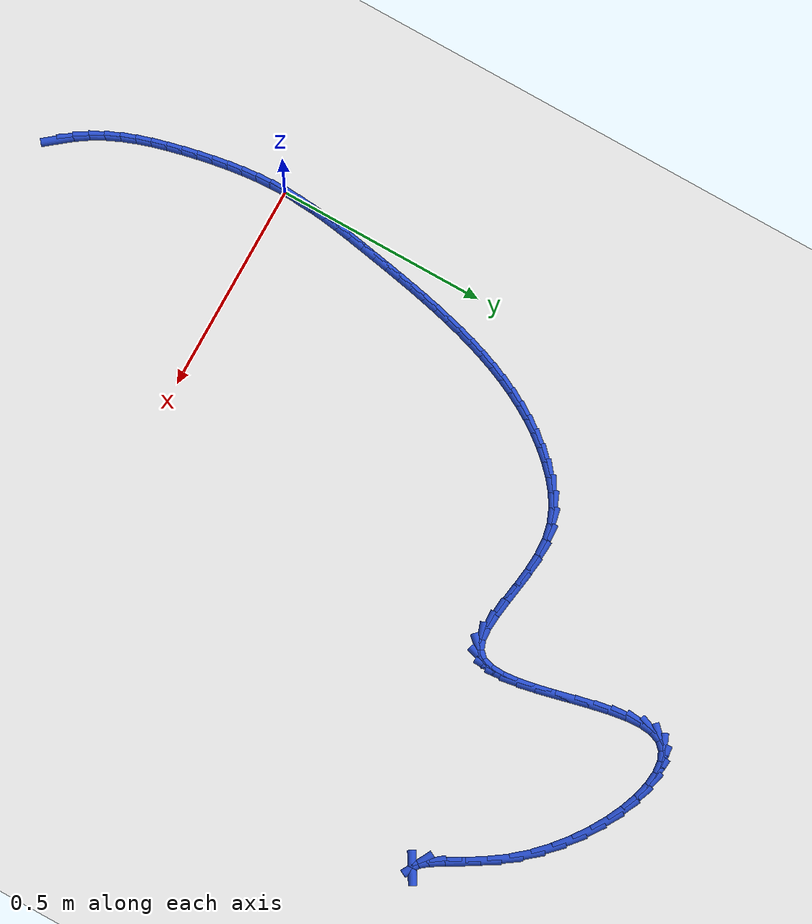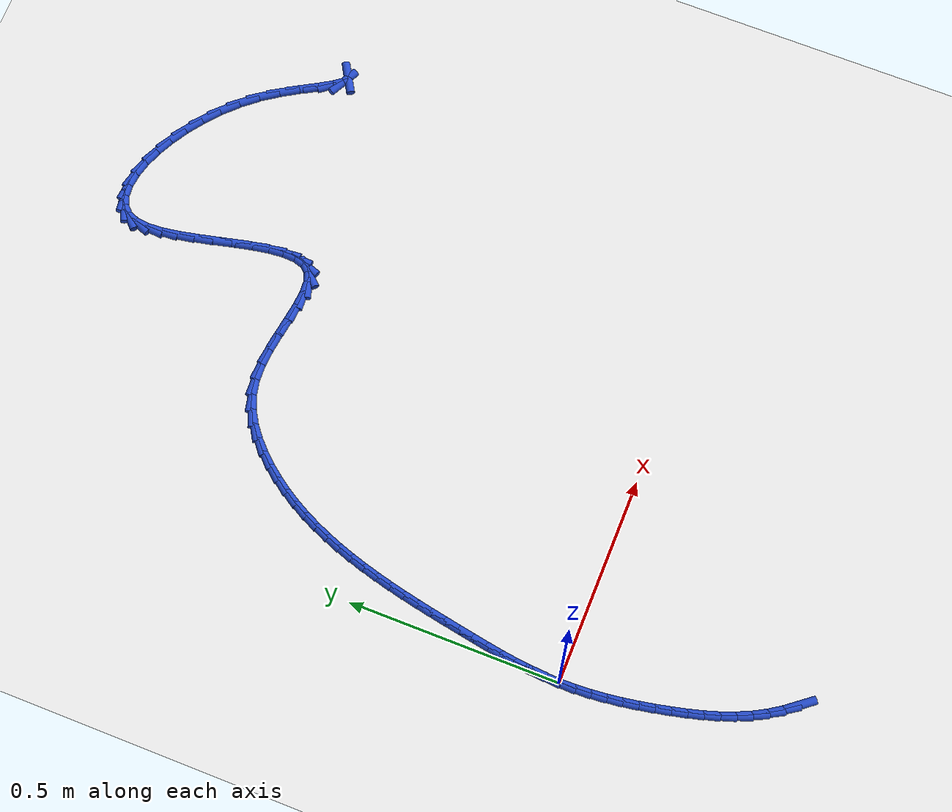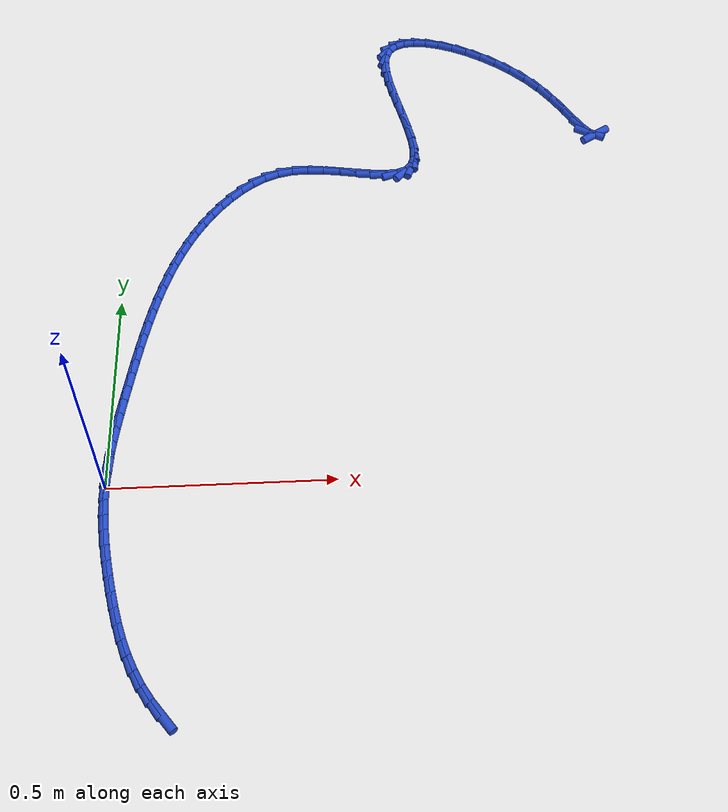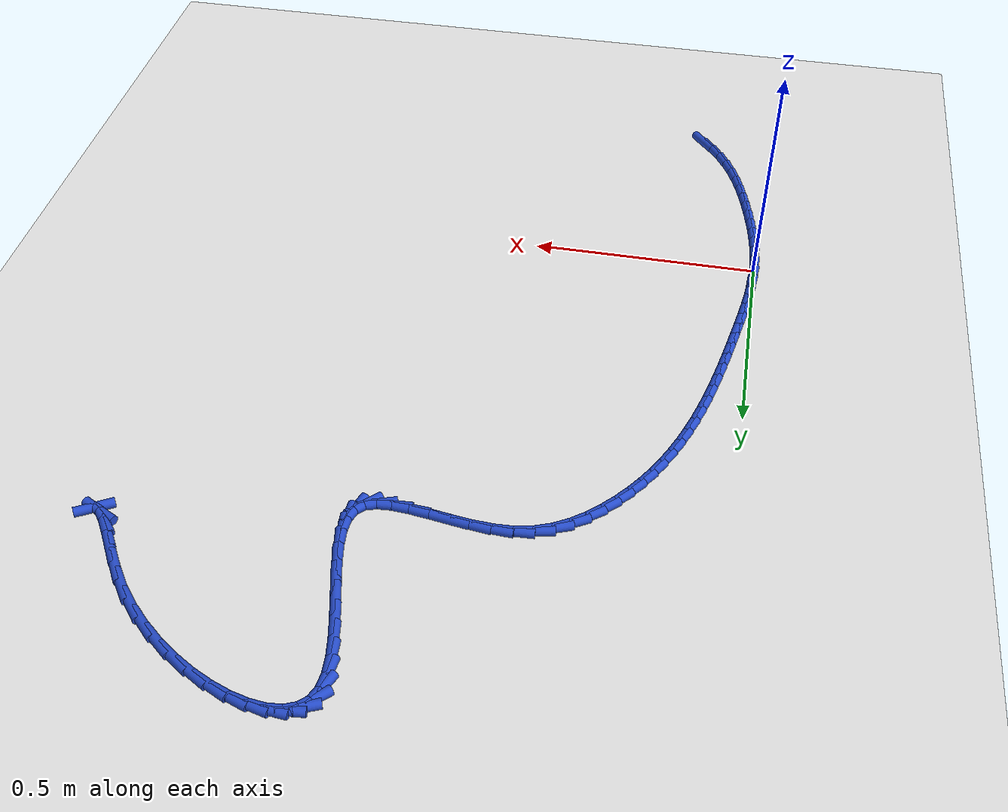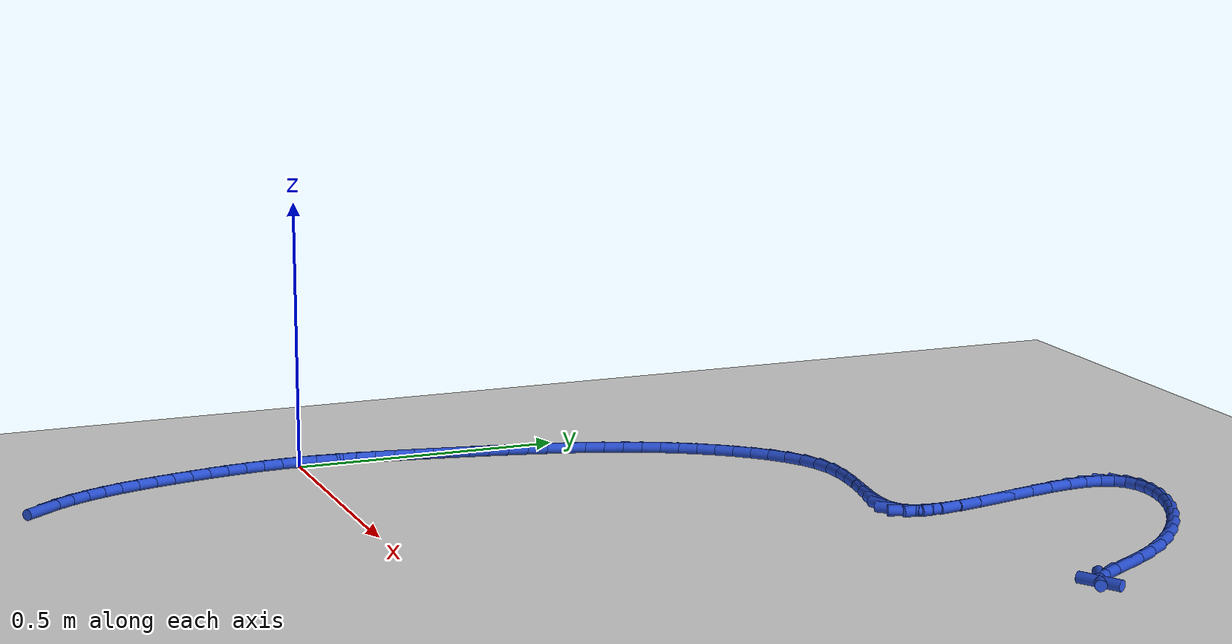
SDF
<sdf version="1.6">
 <world name="default">
  <model name="ground_plane">
   <static>1</static>
   <link name="link">
    <collision name="collision">
     <geometry><plane><normal>0 0 1</normal><size>100 100</size></plane></geometry>
     <surface><friction><ode><mu>100</mu><mu2>50</mu2></ode></friction></surface>
    </collision>
    <visual name="visual">
     <cast_shadows>0</cast_shadows>
     <geometry><plane><normal>0 0 1</normal><size>100 100</size></plane></geometry>
     <material>
      <script><uri>file://media/materials/scripts/gazebo.material</uri><name>Gazebo/WhiteGlow</name></script>
     </material>
    </visual>
   </link>
  </model>
  <model name="line">
   <link name="link_0">
    <pose>-2.6020852139652106e-18 -2.7755575615628914e-17 0.01 0 1.57 1.538051341672518</pose>
    <collision name="collision">
     <geometry><cylinder><radius>0.01</radius><length>0.08</length></cylinder></geometry>
    </collision>
    <visual name="visual">
     <material>
      <script><name>Gazebo/Blue</name><uri>file://media/materials/scripts/gazebo.material</uri></script>
     </material>
     <geometry><cylinder><radius>0.01</radius><length>0.08</length></cylinder></geometry>
    </visual>
   </link>
   <link name="link_1">
    <pose>0.0011565233107194892 0.035306472801564744 0.01 0 1.57 1.4963231635099927</pose>
    <collision name="collision">
     <geometry><cylinder><radius>0.01</radius><length>0.08</length></cylinder></geometry>
    </collision>
    <visual name="visual">
     <material>
      <script><name>Gazebo/Blue</name><uri>file://media/materials/scripts/gazebo.material</uri></script>
     </material>
     <geometry><cylinder><radius>0.01</radius><length>0.08</length></cylinder></geometry>
    </visual>
   </link>
   <link name="link_2">
    <pose>0.0037874917238029113 0.0705688746276953 0.01 0 1.57 1.4616681048065028</pose>
    <collision name="collision">
     <geometry><cylinder><radius>0.01</radius><length>0.08</length></cylinder></geometry>
    </collision>
    <visual name="visual">
     <material>
      <script><name>Gazebo/Blue</name><uri>file://media/materials/scripts/gazebo.material</uri></script>
     </material>
     <geometry><cylinder><radius>0.01</radius><length>0.08</length></cylinder></geometry>
    </visual>
   </link>
   <link name="link_3">
    <pose>0.00765183445429029 0.10583922316953667 0.01 0 1.57 1.4341884930419941</pose>
    <collision name="collision">
     <geometry><cylinder><radius>0.01</radius><length>0.08</length></cylinder></geometry>
    </collision>
    <visual name="visual">
     <material>
      <script><name>Gazebo/Blue</name><uri>file://media/materials/scripts/gazebo.material</uri></script>
     </material>
     <geometry><cylinder><radius>0.01</radius><length>0.08</length></cylinder></geometry>
    </visual>
   </link>
   <link name="link_4">
    <pose>0.012508480717221644 0.1411695361182339 0.01 0 1.57 1.4138716343164732</pose>
    <collision name="collision">
     <geometry><cylinder><radius>0.01</radius><length>0.08</length></cylinder></geometry>
    </collision>
    <visual name="visual">
     <material>
      <script><name>Gazebo/Blue</name><uri>file://media/materials/scripts/gazebo.material</uri></script>
     </material>
     <geometry><cylinder><radius>0.01</radius><length>0.08</length></cylinder></geometry>
    </visual>
   </link>
   <link name="link_5">
    <pose>0.018116359727636994 0.17661183116493212 0.01 0 1.57 1.4006332574241642</pose>
    <collision name="collision">
     <geometry><cylinder><radius>0.01</radius><length>0.08</length></cylinder></geometry>
    </collision>
    <visual name="visual">
     <material>
      <script><name>Gazebo/Blue</name><uri>file://media/materials/scripts/gazebo.material</uri></script>
     </material>
     <geometry><cylinder><radius>0.01</radius><length>0.08</length></cylinder></geometry>
    </visual>
   </link>
   <link name="link_6">
    <pose>0.024234400700576357 0.2122181260007763 0.01 0 1.57 1.3943255280495659</pose>
    <collision name="collision">
     <geometry><cylinder><radius>0.01</radius><length>0.08</length></cylinder></geometry>
    </collision>
    <visual name="visual">
     <material>
      <script><name>Gazebo/Blue</name><uri>file://media/materials/scripts/gazebo.material</uri></script>
     </material>
     <geometry><cylinder><radius>0.01</radius><length>0.08</length></cylinder></geometry>
    </visual>
   </link>
   <link name="link_7">
    <pose>0.030622379469162415 0.24804008281447187 0.01 0 1.57 1.391630001763607</pose>
    <collision name="collision">
     <geometry><cylinder><radius>0.01</radius><length>0.08</length></cylinder></geometry>
    </collision>
    <visual name="visual">
     <material>
      <script><name>Gazebo/Blue</name><uri>file://media/materials/scripts/gazebo.material</uri></script>
     </material>
     <geometry><cylinder><radius>0.01</radius><length>0.08</length></cylinder></geometry>
    </visual>
   </link>
   <link name="link_8">
    <pose>0.03715008431257833 0.28408316859316796 0.01 0 1.57 1.38620507308836</pose>
    <collision name="collision">
     <geometry><cylinder><radius>0.01</radius><length>0.08</length></cylinder></geometry>
    </collision>
    <visual name="visual">
     <material>
      <script><name>Gazebo/Blue</name><uri>file://media/materials/scripts/gazebo.material</uri></script>
     </material>
     <geometry><cylinder><radius>0.01</radius><length>0.08</length></cylinder></geometry>
    </visual>
   </link>
   <link name="link_9">
    <pose>0.04390516262457887 0.320261369350098 0.01 0 1.57 1.377322085851428</pose>
    <collision name="collision">
     <geometry><cylinder><radius>0.01</radius><length>0.08</length></cylinder></geometry>
    </collision>
    <visual name="visual">
     <material>
      <script><name>Gazebo/Blue</name><uri>file://media/materials/scripts/gazebo.material</uri></script>
     </material>
     <geometry><cylinder><radius>0.01</radius><length>0.08</length></cylinder></geometry>
    </visual>
   </link>
   <link name="link_10">
    <pose>0.051000888513635295 0.3564779102137596 0.01 0 1.57 1.364958096829059</pose>
    <collision name="collision">
     <geometry><cylinder><radius>0.01</radius><length>0.08</length></cylinder></geometry>
    </collision>
    <visual name="visual">
     <material>
      <script><name>Gazebo/Blue</name><uri>file://media/materials/scripts/gazebo.material</uri></script>
     </material>
     <geometry><cylinder><radius>0.01</radius><length>0.08</length></cylinder></geometry>
    </visual>
   </link>
   <link name="link_11">
    <pose>0.05855053608821886 0.3926360163126499 0.01 0 1.57 1.3490538640448173</pose>
    <collision name="collision">
     <geometry><cylinder><radius>0.01</radius><length>0.08</length></cylinder></geometry>
    </collision>
    <visual name="visual">
     <material>
      <script><name>Gazebo/Blue</name><uri>file://media/materials/scripts/gazebo.material</uri></script>
     </material>
     <geometry><cylinder><radius>0.01</radius><length>0.08</length></cylinder></geometry>
    </visual>
   </link>
   <link name="link_12">
    <pose>0.06666737945680083 0.42863891277526694 0.01 0 1.57 1.3295176159188433</pose>
    <collision name="collision">
     <geometry><cylinder><radius>0.01</radius><length>0.08</length></cylinder></geometry>
    </collision>
    <visual name="visual">
     <material>
      <script><name>Gazebo/Blue</name><uri>file://media/materials/scripts/gazebo.material</uri></script>
     </material>
     <geometry><cylinder><radius>0.01</radius><length>0.08</length></cylinder></geometry>
    </visual>
   </link>
   <link name="link_13">
    <pose>0.0754646927278525 0.4643898247301082 0.01 0 1.57 1.306229672828329</pose>
    <collision name="collision">
     <geometry><cylinder><radius>0.01</radius><length>0.08</length></cylinder></geometry>
    </collision>
    <visual name="visual">
     <material>
      <script><name>Gazebo/Blue</name><uri>file://media/materials/scripts/gazebo.material</uri></script>
     </material>
     <geometry><cylinder><radius>0.01</radius><length>0.08</length></cylinder></geometry>
    </visual>
   </link>
   <link name="link_14">
    <pose>0.08505575000984508 0.499791977305671 0.01 0 1.57 1.2790485048740847</pose>
    <collision name="collision">
     <geometry><cylinder><radius>0.01</radius><length>0.08</length></cylinder></geometry>
    </collision>
    <visual name="visual">
     <material>
      <script><name>Gazebo/Blue</name><uri>file://media/materials/scripts/gazebo.material</uri></script>
     </material>
     <geometry><cylinder><radius>0.01</radius><length>0.08</length></cylinder></geometry>
    </visual>
   </link>
   <link name="link_15">
    <pose>0.0955538254112499 0.5347485956304533 0.01 0 1.57 1.2478189335547443</pose>
    <collision name="collision">
     <geometry><cylinder><radius>0.01</radius><length>0.08</length></cylinder></geometry>
    </collision>
    <visual name="visual">
     <material>
      <script><name>Gazebo/Blue</name><uri>file://media/materials/scripts/gazebo.material</uri></script>
     </material>
     <geometry><cylinder><radius>0.01</radius><length>0.08</length></cylinder></geometry>
    </visual>
   </link>
   <link name="link_16">
    <pose>0.10707219304053817 0.5691629048329523 0.01 0 1.57 1.212383278387367</pose>
    <collision name="collision">
     <geometry><cylinder><radius>0.01</radius><length>0.08</length></cylinder></geometry>
    </collision>
    <visual name="visual">
     <material>
      <script><name>Gazebo/Blue</name><uri>file://media/materials/scripts/gazebo.material</uri></script>
     </material>
     <geometry><cylinder><radius>0.01</radius><length>0.08</length></cylinder></geometry>
    </visual>
   </link>
   <link name="link_17">
    <pose>0.11972412700618121 0.6029381300416659 0.01 0 1.57 1.172596258499799</pose>
    <collision name="collision">
     <geometry><cylinder><radius>0.01</radius><length>0.08</length></cylinder></geometry>
    </collision>
    <visual name="visual">
     <material>
      <script><name>Gazebo/Blue</name><uri>file://media/materials/scripts/gazebo.material</uri></script>
     </material>
     <geometry><cylinder><radius>0.01</radius><length>0.08</length></cylinder></geometry>
    </visual>
   </link>
   <link name="link_18">
    <pose>0.13362290141665017 0.6359774963850912 0.01 0 1.57 1.128344297698051</pose>
    <collision name="collision">
     <geometry><cylinder><radius>0.01</radius><length>0.08</length></cylinder></geometry>
    </collision>
    <visual name="visual">
     <material>
      <script><name>Gazebo/Blue</name><uri>file://media/materials/scripts/gazebo.material</uri></script>
     </material>
     <geometry><cylinder><radius>0.01</radius><length>0.08</length></cylinder></geometry>
    </visual>
   </link>
   <link name="link_19">
    <pose>0.1488817903804165 0.6681842289917264 0.01 0 1.57 1.0795694333273218</pose>
    <collision name="collision">
     <geometry><cylinder><radius>0.01</radius><length>0.08</length></cylinder></geometry>
    </collision>
    <visual name="visual">
     <material>
      <script><name>Gazebo/Blue</name><uri>file://media/materials/scripts/gazebo.material</uri></script>
     </material>
     <geometry><cylinder><radius>0.01</radius><length>0.08</length></cylinder></geometry>
    </visual>
   </link>
   <link name="link_20">
    <pose>0.1656140680059513 0.6994615529900685 0.01 0 1.57 1.0262971724834187</pose>
    <collision name="collision">
     <geometry><cylinder><radius>0.01</radius><length>0.08</length></cylinder></geometry>
    </collision>
    <visual name="visual">
     <material>
      <script><name>Gazebo/Blue</name><uri>file://media/materials/scripts/gazebo.material</uri></script>
     </material>
     <geometry><cylinder><radius>0.01</radius><length>0.08</length></cylinder></geometry>
    </visual>
   </link>
   <link name="link_21">
    <pose>0.1839330084017259 0.7297126935086153 0.01 0 1.57 0.968666308309646</pose>
    <collision name="collision">
     <geometry><cylinder><radius>0.01</radius><length>0.08</length></cylinder></geometry>
    </collision>
    <visual name="visual">
     <material>
      <script><name>Gazebo/Blue</name><uri>file://media/materials/scripts/gazebo.material</uri></script>
     </material>
     <geometry><cylinder><radius>0.01</radius><length>0.08</length></cylinder></geometry>
    </visual>
   </link>
   <link name="link_22">
    <pose>0.20395188567621161 0.7588408756758646 0.01 0 1.57 0.9069570021050652</pose>
    <collision name="collision">
     <geometry><cylinder><radius>0.01</radius><length>0.08</length></cylinder></geometry>
    </collision>
    <visual name="visual">
     <material>
      <script><name>Gazebo/Blue</name><uri>file://media/materials/scripts/gazebo.material</uri></script>
     </material>
     <geometry><cylinder><radius>0.01</radius><length>0.08</length></cylinder></geometry>
    </visual>
   </link>
   <link name="link_23">
    <pose>0.22578397393787963 0.7867493246203134 0.01 0 1.57 0.8416078980378938</pose>
    <collision name="collision">
     <geometry><cylinder><radius>0.01</radius><length>0.08</length></cylinder></geometry>
    </collision>
    <visual name="visual">
     <material>
      <script><name>Gazebo/Blue</name><uri>file://media/materials/scripts/gazebo.material</uri></script>
     </material>
     <geometry><cylinder><radius>0.01</radius><length>0.08</length></cylinder></geometry>
    </visual>
   </link>
   <link name="link_24">
    <pose>0.24954257643883898 0.8133410925379823 0.01 0 1.57 0.7681548256375087</pose>
    <collision name="collision">
     <geometry><cylinder><radius>0.01</radius><length>0.08</length></cylinder></geometry>
    </collision>
    <visual name="visual">
     <material>
      <script><name>Gazebo/Blue</name><uri>file://media/materials/scripts/gazebo.material</uri></script>
     </material>
     <geometry><cylinder><radius>0.01</radius><length>0.08</length></cylinder></geometry>
    </visual>
   </link>
   <link name="link_25">
    <pose>0.27537787014443277 0.8383004304359555 0.01 0 1.57 0.6709944471113306</pose>
    <collision name="collision">
     <geometry><cylinder><radius>0.01</radius><length>0.08</length></cylinder></geometry>
    </collision>
    <visual name="visual">
     <material>
      <script><name>Gazebo/Blue</name><uri>file://media/materials/scripts/gazebo.material</uri></script>
     </material>
     <geometry><cylinder><radius>0.01</radius><length>0.08</length></cylinder></geometry>
    </visual>
   </link>
   <link name="link_26">
    <pose>0.30354903493636803 0.8606647879659345 0.01 0 1.57 0.5455654605953032</pose>
    <collision name="collision">
     <geometry><cylinder><radius>0.01</radius><length>0.08</length></cylinder></geometry>
    </collision>
    <visual name="visual">
     <material>
      <script><name>Gazebo/Blue</name><uri>file://media/materials/scripts/gazebo.material</uri></script>
     </material>
     <geometry><cylinder><radius>0.01</radius><length>0.08</length></cylinder></geometry>
    </visual>
   </link>
   <link name="link_27">
    <pose>0.3343352957446367 0.8793526714996421 0.01 0 1.57 0.39216581043727256</pose>
    <collision name="collision">
     <geometry><cylinder><radius>0.01</radius><length>0.08</length></cylinder></geometry>
    </collision>
    <visual name="visual">
     <material>
      <script><name>Gazebo/Blue</name><uri>file://media/materials/scripts/gazebo.material</uri></script>
     </material>
     <geometry><cylinder><radius>0.01</radius><length>0.08</length></cylinder></geometry>
    </visual>
   </link>
   <link name="link_28">
    <pose>0.3680158774992311 0.8932825874088011 0.01 0 1.57 0.21618795078555159</pose>
    <collision name="collision">
     <geometry><cylinder><radius>0.01</radius><length>0.08</length></cylinder></geometry>
    </collision>
    <visual name="visual">
     <material>
      <script><name>Gazebo/Blue</name><uri>file://media/materials/scripts/gazebo.material</uri></script>
     </material>
     <geometry><cylinder><radius>0.01</radius><length>0.08</length></cylinder></geometry>
    </visual>
   </link>
   <link name="link_29">
    <pose>0.4048682491638367 0.9013761103642667 0.01 0 1.57 0.049440580541957505</pose>
    <collision name="collision">
     <geometry><cylinder><radius>0.01</radius><length>0.08</length></cylinder></geometry>
    </collision>
    <visual name="visual">
     <material>
      <script><name>Gazebo/Blue</name><uri>file://media/materials/scripts/gazebo.material</uri></script>
     </material>
     <geometry><cylinder><radius>0.01</radius><length>0.08</length></cylinder></geometry>
    </visual>
   </link>
   <link name="link_30">
    <pose>0.44471605097719286 0.9033478156074725 0.01 0 1.57 -0.06217576872446289</pose>
    <collision name="collision">
     <geometry><cylinder><radius>0.01</radius><length>0.08</length></cylinder></geometry>
    </collision>
    <visual name="visual">
     <material>
      <script><name>Gazebo/Blue</name><uri>file://media/materials/scripts/gazebo.material</uri></script>
     </material>
     <geometry><cylinder><radius>0.01</radius><length>0.08</length></cylinder></geometry>
    </visual>
   </link>
   <link name="link_31">
    <pose>0.48632704081781813 0.9007572812809346 0.01 0 1.57 -0.12628590295770223</pose>
    <collision name="collision">
     <geometry><cylinder><radius>0.01</radius><length>0.08</length></cylinder></geometry>
    </collision>
    <visual name="visual">
     <material>
      <script><name>Gazebo/Blue</name><uri>file://media/materials/scripts/gazebo.material</uri></script>
     </material>
     <geometry><cylinder><radius>0.01</radius><length>0.08</length></cylinder></geometry>
    </visual>
   </link>
   <link name="link_32">
    <pose>0.5283191426777786 0.8954258987419723 0.01 0 1.57 -0.1513266641243258</pose>
    <collision name="collision">
     <geometry><cylinder><radius>0.01</radius><length>0.08</length></cylinder></geometry>
    </collision>
    <visual name="visual">
     <material>
      <script><name>Gazebo/Blue</name><uri>file://media/materials/scripts/gazebo.material</uri></script>
     </material>
     <geometry><cylinder><radius>0.01</radius><length>0.08</length></cylinder></geometry>
    </visual>
   </link>
   <link name="link_33">
    <pose>0.5693102805491403 0.8891750593479059 0.01 0 1.57 -0.13766725404210428</pose>
    <collision name="collision">
     <geometry><cylinder><radius>0.01</radius><length>0.08</length></cylinder></geometry>
    </collision>
    <visual name="visual">
     <material>
      <script><name>Gazebo/Blue</name><uri>file://media/materials/scripts/gazebo.material</uri></script>
     </material>
     <geometry><cylinder><radius>0.01</radius><length>0.08</length></cylinder></geometry>
    </visual>
   </link>
   <link name="link_34">
    <pose>0.60791837842397 0.8838261544560547 0.01 0 1.57 -0.07521245691974714</pose>
    <collision name="collision">
     <geometry><cylinder><radius>0.01</radius><length>0.08</length></cylinder></geometry>
    </collision>
    <visual name="visual">
     <material>
      <script><name>Gazebo/Blue</name><uri>file://media/materials/scripts/gazebo.material</uri></script>
     </material>
     <geometry><cylinder><radius>0.01</radius><length>0.08</length></cylinder></geometry>
    </visual>
   </link>
   <link name="link_35">
    <pose>0.6427613602943336 0.8812005754237386 0.01 0 1.57 0.0645368601420958</pose>
    <collision name="collision">
     <geometry><cylinder><radius>0.01</radius><length>0.08</length></cylinder></geometry>
    </collision>
    <visual name="visual">
     <material>
      <script><name>Gazebo/Blue</name><uri>file://media/materials/scripts/gazebo.material</uri></script>
     </material>
     <geometry><cylinder><radius>0.01</radius><length>0.08</length></cylinder></geometry>
    </visual>
   </link>
   <link name="link_36">
    <pose>0.6724571501522971 0.8831197136082769 0.01 0 1.57 0.3434637001141684</pose>
    <collision name="collision">
     <geometry><cylinder><radius>0.01</radius><length>0.08</length></cylinder></geometry>
    </collision>
    <visual name="visual">
     <material>
      <script><name>Gazebo/Blue</name><uri>file://media/materials/scripts/gazebo.material</uri></script>
     </material>
     <geometry><cylinder><radius>0.01</radius><length>0.08</length></cylinder></geometry>
    </visual>
   </link>
   <link name="link_37">
    <pose>0.6956236719899268 0.8914049603669897 0.01 0 1.57 0.81470989247443</pose>
    <collision name="collision">
     <geometry><cylinder><radius>0.01</radius><length>0.08</length></cylinder></geometry>
    </collision>
    <visual name="visual">
     <material>
      <script><name>Gazebo/Blue</name><uri>file://media/materials/scripts/gazebo.material</uri></script>
     </material>
     <geometry><cylinder><radius>0.01</radius><length>0.08</length></cylinder></geometry>
    </visual>
   </link>
   <link name="link_38">
    <pose>0.7110110093431282 0.9077218702640225 0.01 0 1.57 1.2558039798307685</pose>
    <collision name="collision">
     <geometry><cylinder><radius>0.01</radius><length>0.08</length></cylinder></geometry>
    </collision>
    <visual name="visual">
     <material>
      <script><name>Gazebo/Blue</name><uri>file://media/materials/scripts/gazebo.material</uri></script>
     </material>
     <geometry><cylinder><radius>0.01</radius><length>0.08</length></cylinder></geometry>
    </visual>
   </link>
   <link name="link_39">
    <pose>0.7188995199551486 0.9319315649922969 0.01 0 1.57 1.5171374051745228</pose>
    <collision name="collision">
     <geometry><cylinder><radius>0.01</radius><length>0.08</length></cylinder></geometry>
    </collision>
    <visual name="visual">
     <material>
      <script><name>Gazebo/Blue</name><uri>file://media/materials/scripts/gazebo.material</uri></script>
     </material>
     <geometry><cylinder><radius>0.01</radius><length>0.08</length></cylinder></geometry>
    </visual>
   </link>
   <link name="link_40">
    <pose>0.7205539556480465 0.9627344115084111 0.01 0 1.57 -1.4796177917465425</pose>
    <collision name="collision">
     <geometry><cylinder><radius>0.01</radius><length>0.08</length></cylinder></geometry>
    </collision>
    <visual name="visual">
     <material>
      <script><name>Gazebo/Blue</name><uri>file://media/materials/scripts/gazebo.material</uri></script>
     </material>
     <geometry><cylinder><radius>0.01</radius><length>0.08</length></cylinder></geometry>
    </visual>
   </link>
   <link name="link_41">
    <pose>0.7172553459221657 0.9988115828378208 0.01 0 1.57 -1.3984013100552064</pose>
    <collision name="collision">
     <geometry><cylinder><radius>0.01</radius><length>0.08</length></cylinder></geometry>
    </collision>
    <visual name="visual">
     <material>
      <script><name>Gazebo/Blue</name><uri>file://media/materials/scripts/gazebo.material</uri></script>
     </material>
     <geometry><cylinder><radius>0.01</radius><length>0.08</length></cylinder></geometry>
    </visual>
   </link>
   <link name="link_42">
    <pose>0.7102847202778497 1.0388442520059826 0.01 0 1.57 -1.354819314364594</pose>
    <collision name="collision">
     <geometry><cylinder><radius>0.01</radius><length>0.08</length></cylinder></geometry>
    </collision>
    <visual name="visual">
     <material>
      <script><name>Gazebo/Blue</name><uri>file://media/materials/scripts/gazebo.material</uri></script>
     </material>
     <geometry><cylinder><radius>0.01</radius><length>0.08</length></cylinder></geometry>
    </visual>
   </link>
   <link name="link_43">
    <pose>0.7009231082154428 1.081513592038351 0.01 0 1.57 -1.3370869246457529</pose>
    <collision name="collision">
     <geometry><cylinder><radius>0.01</radius><length>0.08</length></cylinder></geometry>
    </collision>
    <visual name="visual">
     <material>
      <script><name>Gazebo/Blue</name><uri>file://media/materials/scripts/gazebo.material</uri></script>
     </material>
     <geometry><cylinder><radius>0.01</radius><length>0.08</length></cylinder></geometry>
    </visual>
   </link>
   <link name="link_44">
    <pose>0.6904515392352885 1.125500775960382 0.01 0 1.57 -1.3407657341686434</pose>
    <collision name="collision">
     <geometry><cylinder><radius>0.01</radius><length>0.08</length></cylinder></geometry>
    </collision>
    <visual name="visual">
     <material>
      <script><name>Gazebo/Blue</name><uri>file://media/materials/scripts/gazebo.material</uri></script>
     </material>
     <geometry><cylinder><radius>0.01</radius><length>0.08</length></cylinder></geometry>
    </visual>
   </link>
   <link name="link_45">
    <pose>0.680151042837731 1.169486976797531 0.01 0 1.57 -1.3663094359716972</pose>
    <collision name="collision">
     <geometry><cylinder><radius>0.01</radius><length>0.08</length></cylinder></geometry>
    </collision>
    <visual name="visual">
     <material>
      <script><name>Gazebo/Blue</name><uri>file://media/materials/scripts/gazebo.material</uri></script>
     </material>
     <geometry><cylinder><radius>0.01</radius><length>0.08</length></cylinder></geometry>
    </visual>
   </link>
   <link name="link_46">
    <pose>0.6713026485231137 1.2121533675752552 0.01 0 1.57 -1.4191930007503297</pose>
    <collision name="collision">
     <geometry><cylinder><radius>0.01</radius><length>0.08</length></cylinder></geometry>
    </collision>
    <visual name="visual">
     <material>
      <script><name>Gazebo/Blue</name><uri>file://media/materials/scripts/gazebo.material</uri></script>
     </material>
     <geometry><cylinder><radius>0.01</radius><length>0.08</length></cylinder></geometry>
    </visual>
   </link>
   <link name="link_47">
    <pose>0.6651873857917808 1.2521811213190082 0.01 0 1.57 -1.5126118740710122</pose>
    <collision name="collision">
     <geometry><cylinder><radius>0.01</radius><length>0.08</length></cylinder></geometry>
    </collision>
    <visual name="visual">
     <material>
      <script><name>Gazebo/Blue</name><uri>file://media/materials/scripts/gazebo.material</uri></script>
     </material>
     <geometry><cylinder><radius>0.01</radius><length>0.08</length></cylinder></geometry>
    </visual>
   </link>
   <link name="link_48">
    <pose>0.6630862841440766 1.2882514110542471 0.01 0 1.57 1.4674415289961418</pose>
    <collision name="collision">
     <geometry><cylinder><radius>0.01</radius><length>0.08</length></cylinder></geometry>
    </collision>
    <visual name="visual">
     <material>
      <script><name>Gazebo/Blue</name><uri>file://media/materials/scripts/gazebo.material</uri></script>
     </material>
     <geometry><cylinder><radius>0.01</radius><length>0.08</length></cylinder></geometry>
    </visual>
   </link>
   <link name="link_49">
    <pose>0.666280373080344 1.3190454098064266 0.01 0 1.57 1.187357471151704</pose>
    <collision name="collision">
     <geometry><cylinder><radius>0.01</radius><length>0.08</length></cylinder></geometry>
    </collision>
    <visual name="visual">
     <material>
      <script><name>Gazebo/Blue</name><uri>file://media/materials/scripts/gazebo.material</uri></script>
     </material>
     <geometry><cylinder><radius>0.01</radius><length>0.08</length></cylinder></geometry>
    </visual>
   </link>
   <link name="link_50">
    <pose>0.6760443005650691 1.3432491530264072 0.01 0 1.57 0.7843848226677435</pose>
    <collision name="collision">
     <geometry><cylinder><radius>0.01</radius><length>0.08</length></cylinder></geometry>
    </collision>
    <visual name="visual">
     <material>
      <script><name>Gazebo/Blue</name><uri>file://media/materials/scripts/gazebo.material</uri></script>
     </material>
     <geometry><cylinder><radius>0.01</radius><length>0.08</length></cylinder></geometry>
    </visual>
   </link>
   <link name="link_51">
    <pose>0.6929292527932961 1.3600999194651617 0.01 0 1.57 0.3995222672710092</pose>
    <collision name="collision">
     <geometry><cylinder><radius>0.01</radius><length>0.08</length></cylinder></geometry>
    </collision>
    <visual name="visual">
     <material>
      <script><name>Gazebo/Blue</name><uri>file://media/materials/scripts/gazebo.material</uri></script>
     </material>
     <geometry><cylinder><radius>0.01</radius><length>0.08</length></cylinder></geometry>
    </visual>
   </link>
   <link name="link_52">
    <pose>0.7161068079275333 1.369886183274504 0.01 0 1.57 0.10937940458509372</pose>
    <collision name="collision">
     <geometry><cylinder><radius>0.01</radius><length>0.08</length></cylinder></geometry>
    </collision>
    <visual name="visual">
     <material>
      <script><name>Gazebo/Blue</name><uri>file://media/materials/scripts/gazebo.material</uri></script>
     </material>
     <geometry><cylinder><radius>0.01</radius><length>0.08</length></cylinder></geometry>
    </visual>
   </link>
   <link name="link_53">
    <pose>0.7445935326822612 1.3730145299229408 0.01 0 1.57 -0.09489096164080808</pose>
    <collision name="collision">
     <geometry><cylinder><radius>0.01</radius><length>0.08</length></cylinder></geometry>
    </collision>
    <visual name="visual">
     <material>
      <script><name>Gazebo/Blue</name><uri>file://media/materials/scripts/gazebo.material</uri></script>
     </material>
     <geometry><cylinder><radius>0.01</radius><length>0.08</length></cylinder></geometry>
    </visual>
   </link>
   <link name="link_54">
    <pose>0.7774059937719618 1.3698915448789786 0.01 0 1.57 -0.24313059566858217</pose>
    <collision name="collision">
     <geometry><cylinder><radius>0.01</radius><length>0.08</length></cylinder></geometry>
    </collision>
    <visual name="visual">
     <material>
      <script><name>Gazebo/Blue</name><uri>file://media/materials/scripts/gazebo.material</uri></script>
     </material>
     <geometry><cylinder><radius>0.01</radius><length>0.08</length></cylinder></geometry>
    </visual>
   </link>
   <link name="link_55">
    <pose>0.8135607579111153 1.3609238136111246 0.01 0 1.57 -0.35793451003754917</pose>
    <collision name="collision">
     <geometry><cylinder><radius>0.01</radius><length>0.08</length></cylinder></geometry>
    </collision>
    <visual name="visual">
     <material>
      <script><name>Gazebo/Blue</name><uri>file://media/materials/scripts/gazebo.material</uri></script>
     </material>
     <geometry><cylinder><radius>0.01</radius><length>0.08</length></cylinder></geometry>
    </visual>
   </link>
   <link name="link_56">
    <pose>0.8520743918142022 1.3465179215878855 0.01 0 1.57 -0.45342643045555214</pose>
    <collision name="collision">
     <geometry><cylinder><radius>0.01</radius><length>0.08</length></cylinder></geometry>
    </collision>
    <visual name="visual">
     <material>
      <script><name>Gazebo/Blue</name><uri>file://media/materials/scripts/gazebo.material</uri></script>
     </material>
     <geometry><cylinder><radius>0.01</radius><length>0.08</length></cylinder></geometry>
    </visual>
   </link>
   <link name="link_57">
    <pose>0.891963462195704 1.327080454277768 0.01 0 1.57 -0.5384788990115779</pose>
    <collision name="collision">
     <geometry><cylinder><radius>0.01</radius><length>0.08</length></cylinder></geometry>
    </collision>
    <visual name="visual">
     <material>
      <script><name>Gazebo/Blue</name><uri>file://media/materials/scripts/gazebo.material</uri></script>
     </material>
     <geometry><cylinder><radius>0.01</radius><length>0.08</length></cylinder></geometry>
    </visual>
   </link>
   <link name="link_58">
    <pose>0.9322445357701018 1.3030179971492788 0.01 0 1.57 -0.6190993183804687</pose>
    <collision name="collision">
     <geometry><cylinder><radius>0.01</radius><length>0.08</length></cylinder></geometry>
    </collision>
    <visual name="visual">
     <material>
      <script><name>Gazebo/Blue</name><uri>file://media/materials/scripts/gazebo.material</uri></script>
     </material>
     <geometry><cylinder><radius>0.01</radius><length>0.08</length></cylinder></geometry>
    </visual>
   </link>
   <link name="link_59">
    <pose>0.9719341792518761 1.2747371356709247 0.01 0 1.57 -0.6998318233921846</pose>
    <collision name="collision">
     <geometry><cylinder><radius>0.01</radius><length>0.08</length></cylinder></geometry>
    </collision>
    <visual name="visual">
     <material>
      <script><name>Gazebo/Blue</name><uri>file://media/materials/scripts/gazebo.material</uri></script>
     </material>
     <geometry><cylinder><radius>0.01</radius><length>0.08</length></cylinder></geometry>
    </visual>
   </link>
   <link name="link_60">
    <pose>1.0100489593555078 1.242644455311213 0.01 0 1.57 -0.7845738702299561</pose>
    <collision name="collision">
     <geometry><cylinder><radius>0.01</radius><length>0.08</length></cylinder></geometry>
    </collision>
    <visual name="visual">
     <material>
      <script><name>Gazebo/Blue</name><uri>file://media/materials/scripts/gazebo.material</uri></script>
     </material>
     <geometry><cylinder><radius>0.01</radius><length>0.08</length></cylinder></geometry>
    </visual>
   </link>
   <link name="link_61">
    <pose>1.0456054427954782 1.2071465415386504 0.01 0 1.57 -0.8770075722311672</pose>
    <collision name="collision">
     <geometry><cylinder><radius>0.01</radius><length>0.08</length></cylinder></geometry>
    </collision>
    <visual name="visual">
     <material>
      <script><name>Gazebo/Blue</name><uri>file://media/materials/scripts/gazebo.material</uri></script>
     </material>
     <geometry><cylinder><radius>0.01</radius><length>0.08</length></cylinder></geometry>
    </visual>
   </link>
   <link name="link_62">
    <pose>1.0776217581828909 1.1686527019873008 0.01 0 1.57 -0.9664603143132241</pose>
    <collision name="collision">
     <geometry><cylinder><radius>0.01</radius><length>0.08</length></cylinder></geometry>
    </collision>
    <visual name="visual">
     <material>
      <script><name>Gazebo/Blue</name><uri>file://media/materials/scripts/gazebo.material</uri></script>
     </material>
     <geometry><cylinder><radius>0.01</radius><length>0.08</length></cylinder></geometry>
    </visual>
   </link>
   <link name="link_63">
    <pose>1.105512067776345 1.128262475090828 0.01 0 1.57 -1.024014719475255</pose>
    <collision name="collision">
     <geometry><cylinder><radius>0.01</radius><length>0.08</length></cylinder></geometry>
    </collision>
    <visual name="visual">
     <material>
      <script><name>Gazebo/Blue</name><uri>file://media/materials/scripts/gazebo.material</uri></script>
     </material>
     <geometry><cylinder><radius>0.01</radius><length>0.08</length></cylinder></geometry>
    </visual>
   </link>
   <link name="link_64">
    <pose>1.1296083669962955 1.0886750530527536 0.01 0 1.57 -1.045932911435459</pose>
    <collision name="collision">
     <geometry><cylinder><radius>0.01</radius><length>0.08</length></cylinder></geometry>
    </collision>
    <visual name="visual">
     <material>
      <script><name>Gazebo/Blue</name><uri>file://media/materials/scripts/gazebo.material</uri></script>
     </material>
     <geometry><cylinder><radius>0.01</radius><length>0.08</length></cylinder></geometry>
    </visual>
   </link>
   <link name="link_65">
    <pose>1.1503723243960713 1.0528156300609144 0.01 0 1.57 -1.0211250644223673</pose>
    <collision name="collision">
     <geometry><cylinder><radius>0.01</radius><length>0.08</length></cylinder></geometry>
    </collision>
    <visual name="visual">
     <material>
      <script><name>Gazebo/Blue</name><uri>file://media/materials/scripts/gazebo.material</uri></script>
     </material>
     <geometry><cylinder><radius>0.01</radius><length>0.08</length></cylinder></geometry>
    </visual>
   </link>
   <link name="link_66">
    <pose>1.168265608529001 1.0236094003031477 0.01 0 1.57 -0.9028643575545194</pose>
    <collision name="collision">
     <geometry><cylinder><radius>0.01</radius><length>0.08</length></cylinder></geometry>
    </collision>
    <visual name="visual">
     <material>
      <script><name>Gazebo/Blue</name><uri>file://media/materials/scripts/gazebo.material</uri></script>
     </material>
     <geometry><cylinder><radius>0.01</radius><length>0.08</length></cylinder></geometry>
    </visual>
   </link>
   <link name="link_67">
    <pose>1.1837498879484143 1.0039815579672908 0.01 0 1.57 -0.484472868882798</pose>
    <collision name="collision">
     <geometry><cylinder><radius>0.01</radius><length>0.08</length></cylinder></geometry>
    </collision>
    <visual name="visual">
     <material>
      <script><name>Gazebo/Blue</name><uri>file://media/materials/scripts/gazebo.material</uri></script>
     </material>
     <geometry><cylinder><radius>0.01</radius><length>0.08</length></cylinder></geometry>
    </visual>
   </link>
   <link name="link_68">
    <pose>1.1972868475526068 0.9968569298598281 0.01 0 1.57 0.5342681660996825</pose>
    <collision name="collision">
     <geometry><cylinder><radius>0.01</radius><length>0.08</length></cylinder></geometry>
    </collision>
    <visual name="visual">
     <material>
      <script><name>Gazebo/Blue</name><uri>file://media/materials/scripts/gazebo.material</uri></script>
     </material>
     <geometry><cylinder><radius>0.01</radius><length>0.08</length></cylinder></geometry>
    </visual>
   </link>
   <link name="link_245">
    <pose>0.14732733589387836 -0.5079154752499901 0.01 0 1.57 -0.9026279440538314</pose>
    <collision name="collision">
     <geometry><cylinder><radius>0.01</radius><length>0.08</length></cylinder></geometry>
    </collision>
    <visual name="visual">
     <material>
      <script><name>Gazebo/Blue</name><uri>file://media/materials/scripts/gazebo.material</uri></script>
     </material>
     <geometry><cylinder><radius>0.01</radius><length>0.08</length></cylinder></geometry>
    </visual>
   </link>
   <link name="link_246">
    <pose>0.12462875268222265 -0.4791567801034415 0.01 0 1.57 -0.9833363708200652</pose>
    <collision name="collision">
     <geometry><cylinder><radius>0.01</radius><length>0.08</length></cylinder></geometry>
    </collision>
    <visual name="visual">
     <material>
      <script><name>Gazebo/Blue</name><uri>file://media/materials/scripts/gazebo.material</uri></script>
     </material>
     <geometry><cylinder><radius>0.01</radius><length>0.08</length></cylinder></geometry>
    </visual>
   </link>
   <link name="link_247">
    <pose>0.10461117209755941 -0.44909507736642845 0.01 0 1.57 -1.0677326823039273</pose>
    <collision name="collision">
     <geometry><cylinder><radius>0.01</radius><length>0.08</length></cylinder></geometry>
    </collision>
    <visual name="visual">
     <material>
      <script><name>Gazebo/Blue</name><uri>file://media/materials/scripts/gazebo.material</uri></script>
     </material>
     <geometry><cylinder><radius>0.01</radius><length>0.08</length></cylinder></geometry>
    </visual>
   </link>
   <link name="link_248">
    <pose>0.08735144929774419 -0.41773013850782337 0.01 0 1.57 -1.1428083950353451</pose>
    <collision name="collision">
     <geometry><cylinder><radius>0.01</radius><length>0.08</length></cylinder></geometry>
    </collision>
    <visual name="visual">
     <material>
      <script><name>Gazebo/Blue</name><uri>file://media/materials/scripts/gazebo.material</uri></script>
     </material>
     <geometry><cylinder><radius>0.01</radius><length>0.08</length></cylinder></geometry>
    </visual>
   </link>
   <link name="link_249">
    <pose>0.07253159236844568 -0.38524384518033206 0.01 0 1.57 -1.2072557754019613</pose>
    <collision name="collision">
     <geometry><cylinder><radius>0.01</radius><length>0.08</length></cylinder></geometry>
    </collision>
    <visual name="visual">
     <material>
      <script><name>Gazebo/Blue</name><uri>file://media/materials/scripts/gazebo.material</uri></script>
     </material>
     <geometry><cylinder><radius>0.01</radius><length>0.08</length></cylinder></geometry>
    </visual>
   </link>
   <link name="link_250">
    <pose>0.05981756106256886 -0.35182548080062365 0.01 0 1.57 -1.260809884449976</pose>
    <collision name="collision">
     <geometry><cylinder><radius>0.01</radius><length>0.08</length></cylinder></geometry>
    </collision>
    <visual name="visual">
     <material>
      <script><name>Gazebo/Blue</name><uri>file://media/materials/scripts/gazebo.material</uri></script>
     </material>
     <geometry><cylinder><radius>0.01</radius><length>0.08</length></cylinder></geometry>
    </visual>
   </link>
   <link name="link_251">
    <pose>0.04887531513301858 -0.31766432878536666 0.01 0 1.57 -1.3035560589541881</pose>
    <collision name="collision">
     <geometry><cylinder><radius>0.01</radius><length>0.08</length></cylinder></geometry>
    </collision>
    <visual name="visual">
     <material>
      <script><name>Gazebo/Blue</name><uri>file://media/materials/scripts/gazebo.material</uri></script>
     </material>
     <geometry><cylinder><radius>0.01</radius><length>0.08</length></cylinder></geometry>
    </visual>
   </link>
   <link name="link_252">
    <pose>0.03937081433269946 -0.28294967255122894 0.01 0 1.57 -1.3357402134638592</pose>
    <collision name="collision">
     <geometry><cylinder><radius>0.01</radius><length>0.08</length></cylinder></geometry>
    </collision>
    <visual name="visual">
     <material>
      <script><name>Gazebo/Blue</name><uri>file://media/materials/scripts/gazebo.material</uri></script>
     </material>
     <geometry><cylinder><radius>0.01</radius><length>0.08</length></cylinder></geometry>
    </visual>
   </link>
   <link name="link_253">
    <pose>0.03097001841451699 -0.24787079551488128 0.01 0 1.57 -1.3586411354531227</pose>
    <collision name="collision">
     <geometry><cylinder><radius>0.01</radius><length>0.08</length></cylinder></geometry>
    </collision>
    <visual name="visual">
     <material>
      <script><name>Gazebo/Blue</name><uri>file://media/materials/scripts/gazebo.material</uri></script>
     </material>
     <geometry><cylinder><radius>0.01</radius><length>0.08</length></cylinder></geometry>
    </visual>
   </link>
   <link name="link_254">
    <pose>0.02337403740439464 -0.2126057005185164 0.01 0 1.57 -1.3810953220205284</pose>
    <collision name="collision">
     <geometry><cylinder><radius>0.01</radius><length>0.08</length></cylinder></geometry>
    </collision>
    <visual name="visual">
     <material>
      <script><name>Gazebo/Blue</name><uri>file://media/materials/scripts/gazebo.material</uri></script>
     </material>
     <geometry><cylinder><radius>0.01</radius><length>0.08</length></cylinder></geometry>
    </visual>
   </link>
   <link name="link_255">
    <pose>0.016582802595107884 -0.17723649141788975 0.01 0 1.57 -1.4075960629378828</pose>
    <collision name="collision">
     <geometry><cylinder><radius>0.01</radius><length>0.08</length></cylinder></geometry>
    </collision>
    <visual name="visual">
     <material>
      <script><name>Gazebo/Blue</name><uri>file://media/materials/scripts/gazebo.material</uri></script>
     </material>
     <geometry><cylinder><radius>0.01</radius><length>0.08</length></cylinder></geometry>
    </visual>
   </link>
   <link name="link_256">
    <pose>0.010747141231460245 -0.1417968459008018 0.01 0 1.57 -1.438303993028333</pose>
    <collision name="collision">
     <geometry><cylinder><radius>0.01</radius><length>0.08</length></cylinder></geometry>
    </collision>
    <visual name="visual">
     <material>
      <script><name>Gazebo/Blue</name><uri>file://media/materials/scripts/gazebo.material</uri></script>
     </material>
     <geometry><cylinder><radius>0.01</radius><length>0.08</length></cylinder></geometry>
    </visual>
   </link>
   <link name="link_257">
    <pose>0.006019041801788683 -0.10632006898386086 0.01 0 1.57 -1.4733469551602647</pose>
    <collision name="collision">
     <geometry><cylinder><radius>0.01</radius><length>0.08</length></cylinder></geometry>
    </collision>
    <visual name="visual">
     <material>
      <script><name>Gazebo/Blue</name><uri>file://media/materials/scripts/gazebo.material</uri></script>
     </material>
     <geometry><cylinder><radius>0.01</radius><length>0.08</length></cylinder></geometry>
    </visual>
   </link>
   <link name="link_258">
    <pose>0.0025504927944301507 -0.07083946568367483 0.01 0 1.57 -1.512837481251615</pose>
    <collision name="collision">
     <geometry><cylinder><radius>0.01</radius><length>0.08</length></cylinder></geometry>
    </collision>
    <visual name="visual">
     <material>
      <script><name>Gazebo/Blue</name><uri>file://media/materials/scripts/gazebo.material</uri></script>
     </material>
     <geometry><cylinder><radius>0.01</radius><length>0.08</length></cylinder></geometry>
    </visual>
   </link>
   <link name="link_259">
    <pose>0.0004934826977216079 -0.03538834101685197 0.01 0 1.57 -1.556852448663604</pose>
    <collision name="collision">
     <geometry><cylinder><radius>0.01</radius><length>0.08</length></cylinder></geometry>
    </collision>
    <visual name="visual">
     <material>
      <script><name>Gazebo/Blue</name><uri>file://media/materials/scripts/gazebo.material</uri></script>
     </material>
     <geometry><cylinder><radius>0.01</radius><length>0.08</length></cylinder></geometry>
    </visual>
   </link>
   <link name="link_260">
    <pose>4.336808689942018e-18 -2.706168622523819e-16 0.01 0 1.57 1.5361840516698786</pose>
    <collision name="collision">
     <geometry><cylinder><radius>0.01</radius><length>0.08</length></cylinder></geometry>
    </collision>
    <visual name="visual">
     <material>
      <script><name>Gazebo/Blue</name><uri>file://media/materials/scripts/gazebo.material</uri></script>
     </material>
     <geometry><cylinder><radius>0.01</radius><length>0.08</length></cylinder></geometry>
    </visual>
   </link>
   <link name="link_261">
    <pose>0.0012220331896022965 0.03529225235027215 0.01 0 1.57 1.4831577253625818</pose>
    <collision name="collision">
     <geometry><cylinder><radius>0.01</radius><length>0.08</length></cylinder></geometry>
    </collision>
    <visual name="visual">
     <material>
      <script><name>Gazebo/Blue</name><uri>file://media/materials/scripts/gazebo.material</uri></script>
     </material>
     <geometry><cylinder><radius>0.01</radius><length>0.08</length></cylinder></geometry>
    </visual>
   </link>
   <link name="link_262">
    <pose>0.004311570754865442 0.0704551110173572 0.01 0 1.57 1.5096765506934977</pose>
    <collision name="collision">
     <geometry><cylinder><radius>0.01</radius><length>0.08</length></cylinder></geometry>
    </collision>
    <visual name="visual">
     <material>
      <script><name>Gazebo/Blue</name><uri>file://media/materials/scripts/gazebo.material</uri></script>
     </material>
     <geometry><cylinder><radius>0.01</radius><length>0.08</length></cylinder></geometry>
    </visual>
   </link>
  </model>
 </world>
</sdf>
